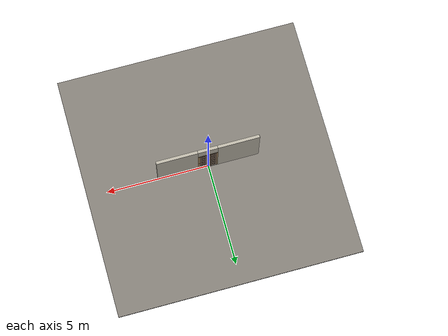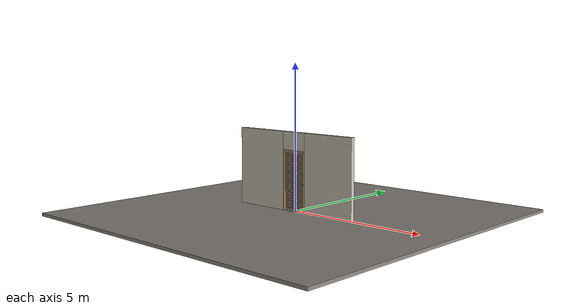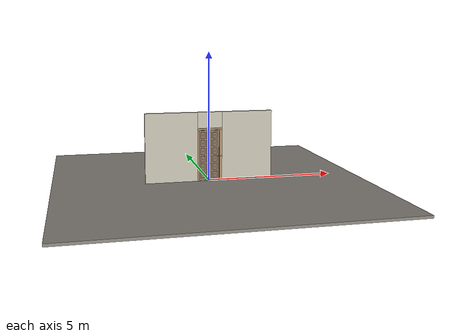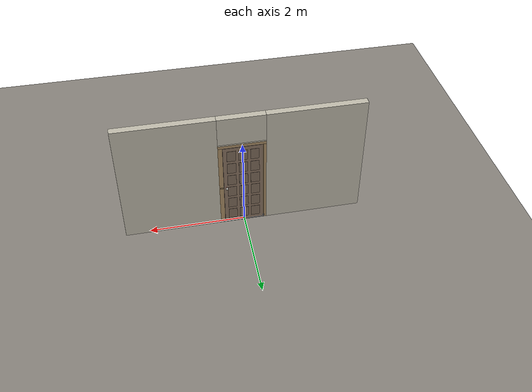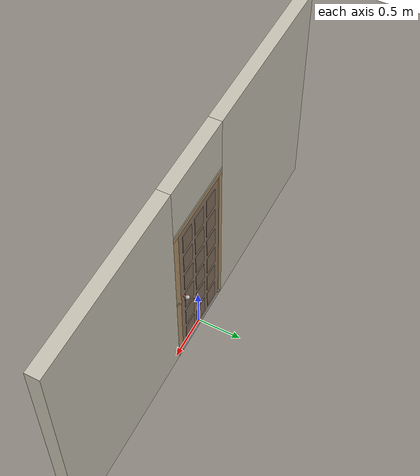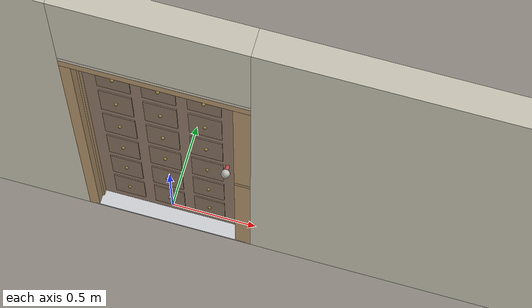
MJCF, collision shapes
<?xml version="1.0" ?>
<mujoco model="db0325_swing_single_full">
  <compiler angle="radian" meshdir="../../hardware" texturedir="../../textures" autolimits="true" inertiafromgeom="false"/>
  <option timestep="0.002" integrator="implicitfast" cone="elliptic" impratio="10" noslip_iterations="3">
    <flag multiccd="enable"/>
  </option>
  <size memory="16M"/>
  <default>
    <geom condim="4" solref="0.005 1" solimp="0.95 0.99 0.001"/>
    <joint solreflimit="0.005 1" solimplimit="0.95 0.99 0.001"/>
    <tendon solreflimit="0.005 1"/>
    <equality solref="0.002 1"/>
  </default>
  <visual>
    <headlight ambient="0.4 0.4 0.4" diffuse="0.7 0.7 0.7" specular="0.2 0.2 0.2"/>
    <quality shadowsize="4096"/>
    <map znear="0.01" zfar="60"/>
  </visual>
  <asset>
    <mesh name="hinge_7678ceaa91" file="hinge_7678ceaa91.obj"/>
    <mesh name="hinge_jamb_24fdb06e8a" file="hinge_jamb_24fdb06e8a.obj"/>
    <mesh name="knob_0ccd68d739" file="knob_0ccd68d739.obj"/>
    <material name="mat_floor" rgba="0.55 0.53 0.5 1" specular="0.2" shininess="0.15" reflectance="0"/>
    <material name="mat_wall" rgba="0.78 0.76 0.7 1" specular="0.2" shininess="0.1" reflectance="0"/>
    <material name="mat_hinge" rgba="0.55 0.56 0.58 1" specular="0.8" shininess="0.55" reflectance="0.4"/>
    <material name="mat_leaf" rgba="0.56 0.475 0.4 1" specular="0.2" shininess="0.5" reflectance="0"/>
    <material name="mat_leaf_panel" rgba="0.515 0.437 0.368 1" specular="0.2" shininess="0.5" reflectance="0"/>
    <material name="mat_button" rgba="0.7 0.6 0.3 1" specular="0.8" shininess="0.7" reflectance="0.4"/>
    <material name="mat_op_hpl" rgba="0.75 0.75 0.72 1" specular="0.2" shininess="0.65" reflectance="0"/>
    <material name="mat_trim" rgba="0.85 0.66 0.3 1" specular="0.8" shininess="0.75" reflectance="0.4"/>
    <material name="mat_bolt" rgba="0.75 0.76 0.77 1" specular="0.8" shininess="0.65" reflectance="0.4"/>
    <material name="mat_frame" rgba="0.7 0.58 0.42 1" specular="0.2" shininess="0.5" reflectance="0"/>
    <material name="mat_seal" rgba="0.1 0.1 0.1 1" specular="0.2" shininess="0.1" reflectance="0"/>
    <material name="mat_threshold" rgba="0.8 0.81 0.83 1" specular="0.8" shininess="0.6" reflectance="0.4"/>
    <texture name="skybox" type="skybox" builtin="gradient" rgb1="0.6 0.7 0.85" rgb2="0.9 0.92 0.95" width="256" height="256"/>
  </asset>
  <worldbody>
    <light name="sun" pos="1.5 -2.5 4" dir="-0.3 0.5 -0.8" directional="true" diffuse="0.8 0.8 0.8" specular="0.3 0.3 0.3" castshadow="true"/>
    <light name="fill" pos="-1.5 2.5 3" dir="0.3 -0.5 -0.7" directional="true" diffuse="0.35 0.35 0.4" castshadow="false"/>
    <camera name="robot_view" pos="0 -2.538625 1.698475" xyaxes="1 0 0 0 0.26963 0.962964" fovy="52"/>
    <camera name="far_view" pos="0 2.457625 1.698475" xyaxes="-1 0 0 0 -0.26963 0.962964" fovy="52"/>
    <camera name="iso" pos="1.898575 -2.138925 2.098175" xyaxes="0.741536 0.670913 0 -0.242917 0.268487 0.932151" fovy="46"/>
    <camera name="detail_handle" pos="0.5305 -0.87125 1.245" xyaxes="0.97561 0.219512 0 -0.070934 0.315262 0.94635" fovy="38"/>
    <geom name="floor" type="box" size="6 6 0.05" pos="0 0 -0.05" material="mat_floor" group="0" contype="1" conaffinity="1" friction="0.8 0.005 0.0001" density="2400"/>
    <geom name="wall_left" type="box" size="1.01475 0.0725 1.35" pos="-1.48525 -0.0405 1.35" material="mat_wall" group="0" contype="1" conaffinity="1" friction="0.6 0.005 0.0001" density="800"/>
    <geom name="wall_right" type="box" size="0.99975 0.0725 1.35" pos="1.50025 -0.0405 1.35" material="mat_wall" group="0" contype="1" conaffinity="1" friction="0.6 0.005 0.0001" density="800"/>
    <geom name="wall_header" type="box" size="0.4855 0.0725 0.306" pos="0.015 -0.0405 2.394" material="mat_wall" group="0" contype="1" conaffinity="1" friction="0.6 0.005 0.0001" density="800"/>
    <geom name="hinge_0_jamb" type="mesh" mesh="hinge_jamb_24fdb06e8a" pos="-0.4075 0.032 0.267" quat="0 1 0 0" material="mat_hinge" group="1" contype="0" conaffinity="0" density="7850"/>
    <geom name="hinge_1_jamb" type="mesh" mesh="hinge_jamb_24fdb06e8a" pos="-0.4075 0.032 1.0003" quat="0 1 0 0" material="mat_hinge" group="1" contype="0" conaffinity="0" density="7850"/>
    <geom name="hinge_2_jamb" type="mesh" mesh="hinge_jamb_24fdb06e8a" pos="-0.4075 0.032 1.8036" quat="0 1 0 0" material="mat_hinge" group="1" contype="0" conaffinity="0" density="7850"/>
    <geom name="jamb_hinge" type="box" size="0.03 0.0725 0.999" pos="-0.4405 -0.0405 0.999" material="mat_frame" group="0" contype="1" conaffinity="1" friction="0.6 0.005 0.0001" density="750"/>
    <geom name="strike_965_wall_n" type="box" size="0.045 0.05325 0.015" pos="0.4555 -0.05975 0.965" material="mat_frame" group="0" contype="1" conaffinity="1" friction="0.6 0.005 0.0001" density="750"/>
    <geom name="strike_965_wall_p" type="box" size="0.045 0.008 0.015" pos="0.4555 0.0145 0.965" material="mat_frame" group="0" contype="1" conaffinity="1" friction="0.6 0.005 0.0001" density="750"/>
    <geom name="strike_965_ramp" type="box" size="0.045 0.016771 0.015" pos="0.458249 0.017375 0.965" quat="0.973249 0 0 -0.229753" material="mat_frame" group="0" contype="1" conaffinity="1" friction="0.12 0.005 0.0001" density="750"/>
    <geom name="strike_965_back" type="box" size="0.036 0.0065 0.015" pos="0.4645 0 0.965" material="mat_frame" group="0" contype="1" conaffinity="1" friction="0.6 0.005 0.0001" density="750"/>
    <geom name="jamb_strike_0" type="box" size="0.045 0.0725 0.475" pos="0.4555 -0.0405 0.475" material="mat_frame" group="0" contype="1" conaffinity="1" friction="0.6 0.005 0.0001" density="750"/>
    <geom name="jamb_strike_1" type="box" size="0.045 0.0725 0.509" pos="0.4555 -0.0405 1.489" material="mat_frame" group="0" contype="1" conaffinity="1" friction="0.6 0.005 0.0001" density="750"/>
    <geom name="jamb_head" type="box" size="0.4855 0.0725 0.03" pos="0.015 -0.0405 2.028" material="mat_frame" group="0" contype="1" conaffinity="1" friction="0.6 0.005 0.0001" density="750"/>
    <geom name="head_stud" type="box" size="0.4855 0.0725 0.015" pos="0.015 -0.0405 2.073" material="mat_wall" group="0" contype="1" conaffinity="1" friction="0.6 0.005 0.0001" density="500"/>
    <geom name="stop_hinge" type="box" size="0.0055 0.016 0.999" pos="-0.405 -0.0415 0.999" material="mat_frame" group="0" contype="1" conaffinity="1" friction="0.6 0.005 0.0001" density="750"/>
    <geom name="stop_strike" type="box" size="0.0055 0.016 0.999" pos="0.405 -0.0415 0.999" material="mat_frame" group="0" contype="1" conaffinity="1" friction="0.6 0.005 0.0001" density="750"/>
    <geom name="stop_head" type="box" size="0.4105 0.016 0.0055" pos="0 -0.0415 1.9925" material="mat_frame" group="0" contype="1" conaffinity="1" friction="0.6 0.005 0.0001" density="750"/>
    <geom name="seal_hinge" type="box" size="0.004 0.002 0.999" pos="-0.4075 -0.027 0.999" material="mat_seal" group="1" contype="0" conaffinity="0" density="1100"/>
    <geom name="seal_strike" type="box" size="0.004 0.002 0.999" pos="0.4075 -0.027 0.999" material="mat_seal" group="1" contype="0" conaffinity="0" density="1100"/>
    <geom name="seal_head" type="box" size="0.3905 0.002 0.008" pos="0 -0.027 1.986" material="mat_seal" group="1" contype="0" conaffinity="0" density="1100"/>
    <geom name="threshold" type="box" size="0.4705 0.0725 0.0065" pos="0 -0.0405 0.0065" material="mat_threshold" group="0" contype="1" conaffinity="1" friction="0.5 0.005 0.0001" density="2700"/>
    <site name="approach_point" pos="0 -1.5 0" quat="1 0 0 0" size="0.05" rgba="0.2 0.9 0.2 0.5" group="4"/>
    <site name="goal_point" pos="0 1.5 0" quat="1 0 0 0" size="0.05" rgba="0.2 0.9 0.2 0.5" group="4"/>
    <site name="door_plane_center" pos="0 0 0.999" quat="1 0 0 0" size="0.02" rgba="0.2 0.9 0.2 0.5" group="4"/>
    <body name="leaf_riser" pos="-0.4105 0 0">
      <inertial pos="0.003 0.032 0.055" mass="0.174012" quat="0.707107 0 0.707107 0" diaginertia="0.000017053 0.00002732 0.00002732"/>
      <joint name="leaf_rise" type="slide" axis="0 0 1" limited="true" range="0 0.0176" damping="1" armature="0.5"/>
      <geom name="leaf_riser_marker" type="cylinder" size="0.014 0.018" pos="0.003 0.032 0.055" material="mat_hinge" group="1" contype="0" conaffinity="0" density="7850"/>
      <body name="leaf" pos="0 0 0">
        <inertial pos="0.40529 -0.000096 1.000539" mass="56.968616" quat="0.500352 0.499457 -0.500534 0.499656" diaginertia="3.206865184 18.389755298 21.571242948"/>
        <joint name="leaf_hinge" type="hinge" axis="0 0 1" pos="0.003 0.032 0" limited="true" range="0 2.443461" solreflimit="0.02 1" damping="0.206618" frictionloss="7.728704" armature="0.02"/>
        <geom name="leaf_slab" type="box" size="0.4065 0.025 0.9833" pos="0.4095 0 1.0003" material="mat_leaf" group="0" contype="1" conaffinity="1" friction="0.4 0.005 0.0001" density="1"/>
        <geom name="leaf_panel_0_n" type="box" size="0.088833 0.003 0.12555" pos="0.171833 -0.028 0.22255" material="mat_leaf_panel" group="1" contype="0" conaffinity="0" density="1"/>
        <geom name="leaf_panel_0_p" type="box" size="0.088833 0.003 0.12555" pos="0.171833 0.028 0.22255" material="mat_leaf_panel" group="1" contype="0" conaffinity="0" density="1"/>
        <geom name="leaf_panel_1_n" type="box" size="0.088833 0.003 0.12555" pos="0.4095 -0.028 0.22255" material="mat_leaf_panel" group="1" contype="0" conaffinity="0" density="1"/>
        <geom name="leaf_panel_1_p" type="box" size="0.088833 0.003 0.12555" pos="0.4095 0.028 0.22255" material="mat_leaf_panel" group="1" contype="0" conaffinity="0" density="1"/>
        <geom name="leaf_panel_2_n" type="box" size="0.088833 0.003 0.12555" pos="0.647167 -0.028 0.22255" material="mat_leaf_panel" group="1" contype="0" conaffinity="0" density="1"/>
        <geom name="leaf_panel_2_p" type="box" size="0.088833 0.003 0.12555" pos="0.647167 0.028 0.22255" material="mat_leaf_panel" group="1" contype="0" conaffinity="0" density="1"/>
        <geom name="leaf_panel_3_n" type="box" size="0.088833 0.003 0.12555" pos="0.171833 -0.028 0.53365" material="mat_leaf_panel" group="1" contype="0" conaffinity="0" density="1"/>
        <geom name="leaf_panel_3_p" type="box" size="0.088833 0.003 0.12555" pos="0.171833 0.028 0.53365" material="mat_leaf_panel" group="1" contype="0" conaffinity="0" density="1"/>
        <geom name="leaf_panel_4_n" type="box" size="0.088833 0.003 0.12555" pos="0.4095 -0.028 0.53365" material="mat_leaf_panel" group="1" contype="0" conaffinity="0" density="1"/>
        <geom name="leaf_panel_4_p" type="box" size="0.088833 0.003 0.12555" pos="0.4095 0.028 0.53365" material="mat_leaf_panel" group="1" contype="0" conaffinity="0" density="1"/>
        <geom name="leaf_panel_5_n" type="box" size="0.088833 0.003 0.12555" pos="0.647167 -0.028 0.53365" material="mat_leaf_panel" group="1" contype="0" conaffinity="0" density="1"/>
        <geom name="leaf_panel_5_p" type="box" size="0.088833 0.003 0.12555" pos="0.647167 0.028 0.53365" material="mat_leaf_panel" group="1" contype="0" conaffinity="0" density="1"/>
        <geom name="leaf_panel_6_n" type="box" size="0.088833 0.003 0.12555" pos="0.171833 -0.028 0.84475" material="mat_leaf_panel" group="1" contype="0" conaffinity="0" density="1"/>
        <geom name="leaf_panel_6_p" type="box" size="0.088833 0.003 0.12555" pos="0.171833 0.028 0.84475" material="mat_leaf_panel" group="1" contype="0" conaffinity="0" density="1"/>
        <geom name="leaf_panel_7_n" type="box" size="0.088833 0.003 0.12555" pos="0.4095 -0.028 0.84475" material="mat_leaf_panel" group="1" contype="0" conaffinity="0" density="1"/>
        <geom name="leaf_panel_7_p" type="box" size="0.088833 0.003 0.12555" pos="0.4095 0.028 0.84475" material="mat_leaf_panel" group="1" contype="0" conaffinity="0" density="1"/>
        <geom name="leaf_panel_8_n" type="box" size="0.088833 0.003 0.12555" pos="0.647167 -0.028 0.84475" material="mat_leaf_panel" group="1" contype="0" conaffinity="0" density="1"/>
        <geom name="leaf_panel_8_p" type="box" size="0.088833 0.003 0.12555" pos="0.647167 0.028 0.84475" material="mat_leaf_panel" group="1" contype="0" conaffinity="0" density="1"/>
        <geom name="leaf_panel_9_n" type="box" size="0.088833 0.003 0.12555" pos="0.171833 -0.028 1.15585" material="mat_leaf_panel" group="1" contype="0" conaffinity="0" density="1"/>
        <geom name="leaf_panel_9_p" type="box" size="0.088833 0.003 0.12555" pos="0.171833 0.028 1.15585" material="mat_leaf_panel" group="1" contype="0" conaffinity="0" density="1"/>
        <geom name="leaf_panel_10_n" type="box" size="0.088833 0.003 0.12555" pos="0.4095 -0.028 1.15585" material="mat_leaf_panel" group="1" contype="0" conaffinity="0" density="1"/>
        <geom name="leaf_panel_10_p" type="box" size="0.088833 0.003 0.12555" pos="0.4095 0.028 1.15585" material="mat_leaf_panel" group="1" contype="0" conaffinity="0" density="1"/>
        <geom name="leaf_panel_11_n" type="box" size="0.088833 0.003 0.12555" pos="0.647167 -0.028 1.15585" material="mat_leaf_panel" group="1" contype="0" conaffinity="0" density="1"/>
        <geom name="leaf_panel_11_p" type="box" size="0.088833 0.003 0.12555" pos="0.647167 0.028 1.15585" material="mat_leaf_panel" group="1" contype="0" conaffinity="0" density="1"/>
        <geom name="leaf_panel_12_n" type="box" size="0.088833 0.003 0.12555" pos="0.171833 -0.028 1.46695" material="mat_leaf_panel" group="1" contype="0" conaffinity="0" density="1"/>
        <geom name="leaf_panel_12_p" type="box" size="0.088833 0.003 0.12555" pos="0.171833 0.028 1.46695" material="mat_leaf_panel" group="1" contype="0" conaffinity="0" density="1"/>
        <geom name="leaf_panel_13_n" type="box" size="0.088833 0.003 0.12555" pos="0.4095 -0.028 1.46695" material="mat_leaf_panel" group="1" contype="0" conaffinity="0" density="1"/>
        <geom name="leaf_panel_13_p" type="box" size="0.088833 0.003 0.12555" pos="0.4095 0.028 1.46695" material="mat_leaf_panel" group="1" contype="0" conaffinity="0" density="1"/>
        <geom name="leaf_panel_14_n" type="box" size="0.088833 0.003 0.12555" pos="0.647167 -0.028 1.46695" material="mat_leaf_panel" group="1" contype="0" conaffinity="0" density="1"/>
        <geom name="leaf_panel_14_p" type="box" size="0.088833 0.003 0.12555" pos="0.647167 0.028 1.46695" material="mat_leaf_panel" group="1" contype="0" conaffinity="0" density="1"/>
        <geom name="leaf_panel_15_n" type="box" size="0.088833 0.003 0.12555" pos="0.171833 -0.028 1.77805" material="mat_leaf_panel" group="1" contype="0" conaffinity="0" density="1"/>
        <geom name="leaf_panel_15_p" type="box" size="0.088833 0.003 0.12555" pos="0.171833 0.028 1.77805" material="mat_leaf_panel" group="1" contype="0" conaffinity="0" density="1"/>
        <geom name="leaf_panel_16_n" type="box" size="0.088833 0.003 0.12555" pos="0.4095 -0.028 1.77805" material="mat_leaf_panel" group="1" contype="0" conaffinity="0" density="1"/>
        <geom name="leaf_panel_16_p" type="box" size="0.088833 0.003 0.12555" pos="0.4095 0.028 1.77805" material="mat_leaf_panel" group="1" contype="0" conaffinity="0" density="1"/>
        <geom name="leaf_panel_17_n" type="box" size="0.088833 0.003 0.12555" pos="0.647167 -0.028 1.77805" material="mat_leaf_panel" group="1" contype="0" conaffinity="0" density="1"/>
        <geom name="leaf_panel_17_p" type="box" size="0.088833 0.003 0.12555" pos="0.647167 0.028 1.77805" material="mat_leaf_panel" group="1" contype="0" conaffinity="0" density="1"/>
        <geom name="leaf_tuft_0" type="sphere" size="0.01" pos="0.171833 -0.033 0.22255" material="mat_button" group="2" contype="0" conaffinity="0" density="7850"/>
        <geom name="leaf_tuft_1" type="sphere" size="0.01" pos="0.4095 -0.033 0.22255" material="mat_button" group="2" contype="0" conaffinity="0" density="7850"/>
        <geom name="leaf_tuft_2" type="sphere" size="0.01" pos="0.647167 -0.033 0.22255" material="mat_button" group="2" contype="0" conaffinity="0" density="7850"/>
        <geom name="leaf_tuft_3" type="sphere" size="0.01" pos="0.171833 -0.033 0.53365" material="mat_button" group="2" contype="0" conaffinity="0" density="7850"/>
        <geom name="leaf_tuft_4" type="sphere" size="0.01" pos="0.4095 -0.033 0.53365" material="mat_button" group="2" contype="0" conaffinity="0" density="7850"/>
        <geom name="leaf_tuft_5" type="sphere" size="0.01" pos="0.647167 -0.033 0.53365" material="mat_button" group="2" contype="0" conaffinity="0" density="7850"/>
        <geom name="leaf_tuft_6" type="sphere" size="0.01" pos="0.171833 -0.033 0.84475" material="mat_button" group="2" contype="0" conaffinity="0" density="7850"/>
        <geom name="leaf_tuft_7" type="sphere" size="0.01" pos="0.4095 -0.033 0.84475" material="mat_button" group="2" contype="0" conaffinity="0" density="7850"/>
        <geom name="leaf_tuft_8" type="sphere" size="0.01" pos="0.647167 -0.033 0.84475" material="mat_button" group="2" contype="0" conaffinity="0" density="7850"/>
        <geom name="leaf_tuft_9" type="sphere" size="0.01" pos="0.171833 -0.033 1.15585" material="mat_button" group="2" contype="0" conaffinity="0" density="7850"/>
        <geom name="leaf_tuft_10" type="sphere" size="0.01" pos="0.4095 -0.033 1.15585" material="mat_button" group="2" contype="0" conaffinity="0" density="7850"/>
        <geom name="leaf_tuft_11" type="sphere" size="0.01" pos="0.647167 -0.033 1.15585" material="mat_button" group="2" contype="0" conaffinity="0" density="7850"/>
        <geom name="leaf_tuft_12" type="sphere" size="0.01" pos="0.171833 -0.033 1.46695" material="mat_button" group="2" contype="0" conaffinity="0" density="7850"/>
        <geom name="leaf_tuft_13" type="sphere" size="0.01" pos="0.4095 -0.033 1.46695" material="mat_button" group="2" contype="0" conaffinity="0" density="7850"/>
        <geom name="leaf_tuft_14" type="sphere" size="0.01" pos="0.647167 -0.033 1.46695" material="mat_button" group="2" contype="0" conaffinity="0" density="7850"/>
        <geom name="leaf_tuft_15" type="sphere" size="0.01" pos="0.171833 -0.033 1.77805" material="mat_button" group="2" contype="0" conaffinity="0" density="7850"/>
        <geom name="leaf_tuft_16" type="sphere" size="0.01" pos="0.4095 -0.033 1.77805" material="mat_button" group="2" contype="0" conaffinity="0" density="7850"/>
        <geom name="leaf_tuft_17" type="sphere" size="0.01" pos="0.647167 -0.033 1.77805" material="mat_button" group="2" contype="0" conaffinity="0" density="7850"/>
        <geom name="hinge_0" type="mesh" mesh="hinge_7678ceaa91" pos="0.003 0.032 0.267" quat="0 1 0 0" material="mat_hinge" group="1" contype="0" conaffinity="0" density="7850"/>
        <geom name="hinge_1" type="mesh" mesh="hinge_7678ceaa91" pos="0.003 0.032 1.0003" quat="0 1 0 0" material="mat_hinge" group="1" contype="0" conaffinity="0" density="7850"/>
        <geom name="hinge_2" type="mesh" mesh="hinge_7678ceaa91" pos="0.003 0.032 1.8036" quat="0 1 0 0" material="mat_hinge" group="1" contype="0" conaffinity="0" density="7850"/>
        <geom name="leaf_latch_bolt_faceplate" type="box" size="0.0006 0.011 0.025" pos="0.8154 0 0.965" material="mat_bolt" group="1" contype="0" conaffinity="0" density="8500"/>
        <site name="leaf_edge_mid" pos="0.816 0 0.9833" quat="1 0 0 0" size="0.02" rgba="0.2 0.9 0.2 0.5" group="4"/>
        <body name="leaf_handle" pos="0.761 0 0.965">
          <inertial pos="0 0 0" mass="1.163399" quat="0.5 0.5 0.5 0.5" diaginertia="0.000298898 0.004824421 0.004824421"/>
          <joint name="leaf_handle_hinge" type="hinge" axis="0 -1 0" limited="true" range="0 0.85" damping="0.128368" frictionloss="0.032" stiffness="0.4" springref="-0.5" armature="0.01"/>
          <geom name="leaf_handle_spindle" type="cylinder" size="0.006 0.033" pos="0 0 0" quat="0.707107 -0.707107 0 0" material="mat_op_hpl" group="1" contype="0" conaffinity="0" density="7850"/>
          <geom name="leaf_handle_knob_n" type="mesh" mesh="knob_0ccd68d739" pos="0 -0.025 0" quat="0.707107 0.707107 0 0" material="mat_op_hpl" group="1" contype="0" conaffinity="0" density="3000"/>
          <geom name="leaf_handle_knob_col_n" type="sphere" size="0.02475" pos="0 -0.07125 0" material="mat_op_hpl" group="0" contype="1" conaffinity="1" friction="0.9 0.01 0.0001" density="3000"/>
          <geom name="leaf_handle_knob_neck_n" type="cylinder" size="0.011 0.012" pos="0 -0.037 0" quat="0.707107 -0.707107 0 0" material="mat_op_hpl" group="3" contype="1" conaffinity="1" rgba="0.8 0.3 0.3 0.25" friction="0.6 0.005 0.0001" density="3000"/>
          <geom name="leaf_handle_knob_p" type="mesh" mesh="knob_0ccd68d739" pos="0 0.025 0" quat="-0.707107 0.707107 0 0" material="mat_op_hpl" group="1" contype="0" conaffinity="0" density="3000"/>
          <geom name="leaf_handle_knob_col_p" type="sphere" size="0.02475" pos="0 0.07125 0" material="mat_op_hpl" group="0" contype="1" conaffinity="1" friction="0.9 0.01 0.0001" density="3000"/>
          <geom name="leaf_handle_knob_neck_p" type="cylinder" size="0.011 0.012" pos="0 0.037 0" quat="0.707107 -0.707107 0 0" material="mat_op_hpl" group="3" contype="1" conaffinity="1" rgba="0.8 0.3 0.3 0.25" friction="0.6 0.005 0.0001" density="3000"/>
          <site name="leaf_handle_grip_n" pos="0 -0.07125 0" quat="1 0 0 0" size="0.012" rgba="0.2 0.9 0.2 0.5" group="4"/>
          <site name="leaf_handle_grip_p" pos="0 0.07125 0" quat="1 0 0 0" size="0.012" rgba="0.2 0.9 0.2 0.5" group="4"/>
        </body>
        <body name="leaf_latch_bolt" pos="0.816 0 0.965">
          <inertial pos="-0.008 0 0" mass="0.027149" quat="0 0 0.707107 0.707107" diaginertia="0.000000328 0.000003943 0.000003943"/>
          <joint name="leaf_latch_bolt_slide" type="slide" axis="-1 0 0" limited="true" range="0 0.014" damping="2" frictionloss="0.3" stiffness="400" springref="-0.01" armature="0.1"/>
          <geom name="leaf_latch_bolt_capsule" type="capsule" size="0.005 0.017" pos="-0.008 0 0" quat="0.707107 0 0.707107 0" material="mat_bolt" group="0" contype="1" conaffinity="1" friction="0.2 0.005 0.0001" density="8500"/>
        </body>
      </body>
    </body>
  </worldbody>
  <tendon>
    <fixed name="leaf_latch_bolt_coupling" limited="true" range="0 10">
      <joint joint="leaf_latch_bolt_slide" coef="1"/>
      <joint joint="leaf_handle_hinge" coef="-0.018667"/>
    </fixed>
  </tendon>
  <equality>
    <joint name="leaf_rise_couple" joint1="leaf_rise" joint2="leaf_hinge" polycoef="0 0.005093 0 0 0" active="true"/>
  </equality>
  <sensor>
    <jointpos name="leaf_hinge_pos" joint="leaf_hinge"/>
    <jointvel name="leaf_hinge_vel" joint="leaf_hinge"/>
    <jointpos name="leaf_handle_hinge_pos" joint="leaf_handle_hinge"/>
    <jointvel name="leaf_handle_hinge_vel" joint="leaf_handle_hinge"/>
    <jointpos name="leaf_latch_bolt_slide_pos" joint="leaf_latch_bolt_slide"/>
    <jointvel name="leaf_latch_bolt_slide_vel" joint="leaf_latch_bolt_slide"/>
  </sensor>
</mujoco>
